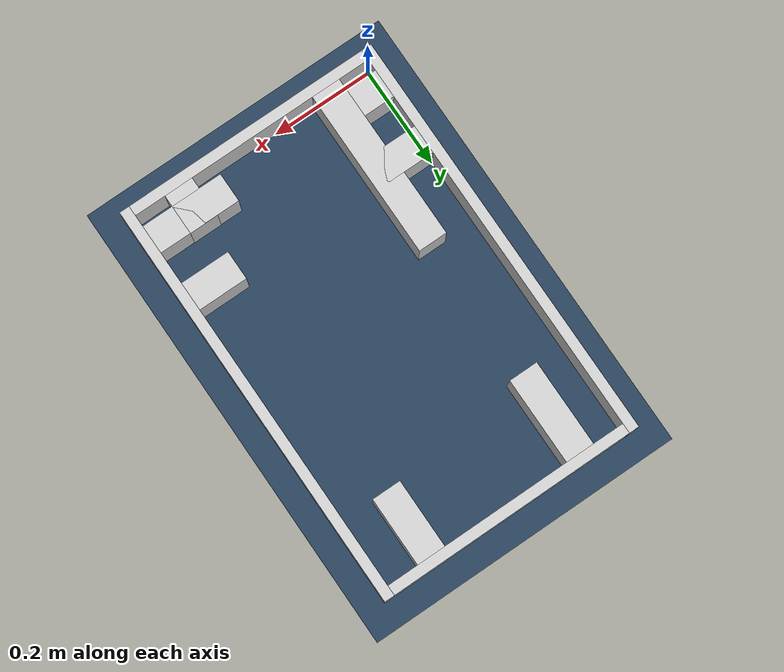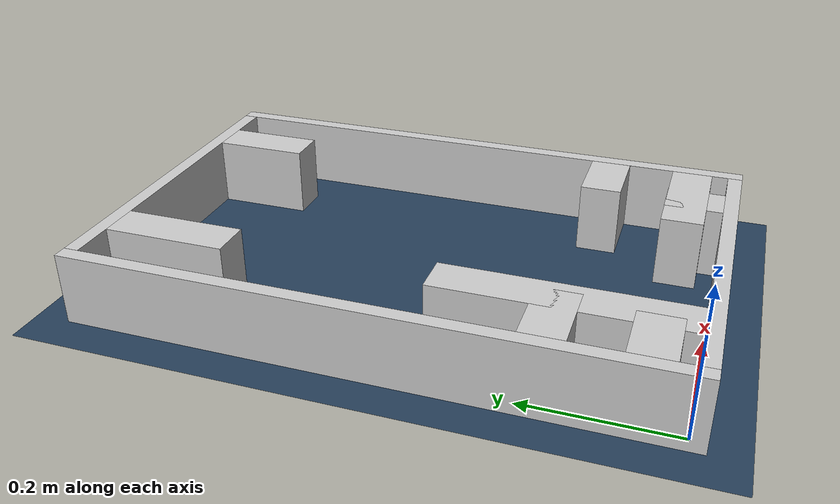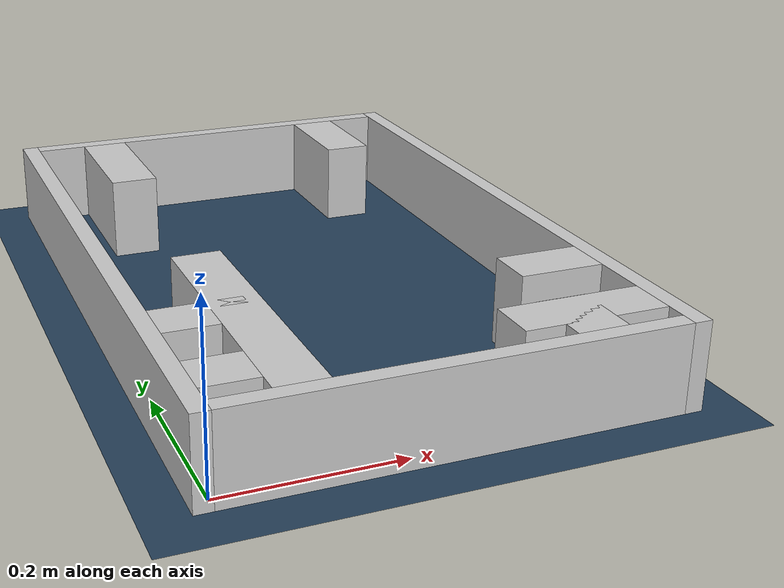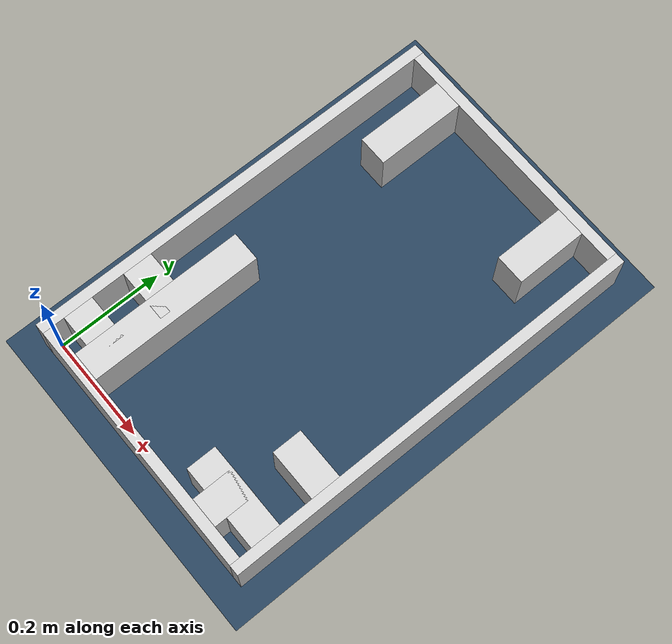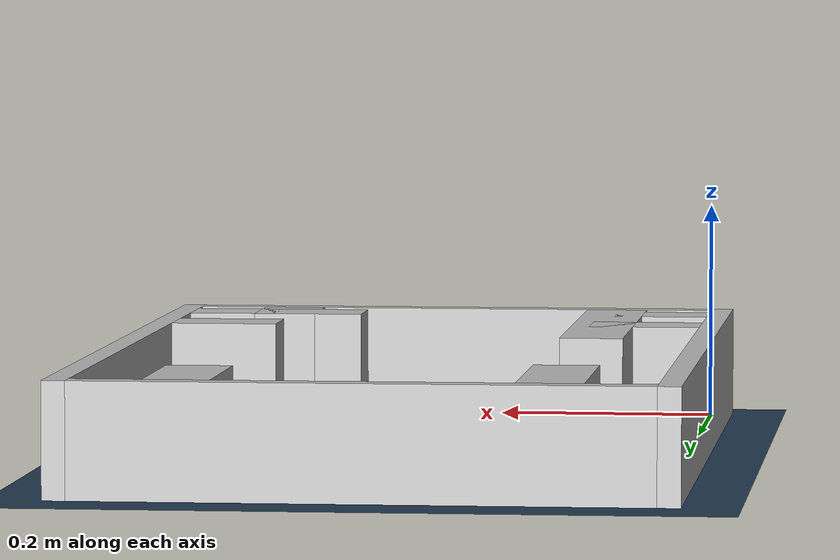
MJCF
<?xml version="1.0" ?>
<mujoco model="generated_real_template">
  <compiler angle="degree"/>
  <option timestep="0.002" integrator="implicitfast" iterations="100" cone="elliptic"/>
  <default>
    <geom density="1"/>
  </default>
  <asset>
    <texture builtin="gradient" height="3072" rgb1="0.3 0.5 0.7" rgb2="0 0 0" type="skybox" width="512"/>
    <texture builtin="checker" height="300" mark="edge" markrgb="0.8 0.8 0.8" name="groundplane" rgb1="0.2 0.3 0.4" rgb2="0.1 0.2 0.3" type="2d" width="300"/>
    <material name="groundplane" reflectance="0.2" texrepeat="5 5" texture="groundplane" texuniform="true"/>
  </asset>
  <worldbody>
    <light dir="0 0 -1" directional="true" pos="0 0 1.5"/>
    <geom name="floor" type="plane" condim="4" friction="0.5 0.005 0.001" material="groundplane" size="0 0 0.05"/>
    <body name="walls">
      <geom name="wall_boundary_left" type="box" condim="4" friction="1.0 0.005 0.0001" rgba="0.8 0.8 0.8 1" pos="-0.010000 0.387500 0.050000" euler="0 0 0.000000" size="0.010000 0.407500 0.050000"/>
      <geom name="wall_boundary_right" type="box" condim="4" friction="1.0 0.005 0.0001" rgba="0.8 0.8 0.8 1" pos="0.500000 0.387500 0.050000" euler="0 0 0.000000" size="0.010000 0.407500 0.050000"/>
      <geom name="wall_boundary_bottom" type="box" condim="4" friction="1.0 0.005 0.0001" rgba="0.8 0.8 0.8 1" pos="0.245000 -0.010000 0.050000" euler="0 0 0.000000" size="0.245000 0.010000 0.050000"/>
      <geom name="wall_boundary_top" type="box" condim="4" friction="1.0 0.005 0.0001" rgba="0.8 0.8 0.8 1" pos="0.245000 0.785000 0.050000" euler="0 0 0.000000" size="0.245000 0.010000 0.050000"/>
      <geom name="wall_inner_1_1" type="box" condim="4" friction="1.0 0.005 0.0001" rgba="0.8 0.8 0.8 1" pos="0.050641 0.171994 0.050000" euler="0 0 0.000000" size="0.050641 0.028500 0.050000"/>
      <geom name="wall_inner_1_2" type="box" condim="4" friction="1.0 0.005 0.0001" rgba="0.8 0.8 0.8 1" pos="0.441272 0.171994 0.050000" euler="0 0 0.000000" size="0.048728 0.028500 0.050000"/>
      <geom name="wall_inner_2_1" type="box" condim="4" friction="1.0 0.005 0.0001" rgba="0.8 0.8 0.8 1" pos="0.089701 0.165179 0.050000" euler="0 0 90.000000" size="0.165179 0.028500 0.050000"/>
      <geom name="wall_inner_2_2" type="box" condim="4" friction="1.0 0.005 0.0001" rgba="0.8 0.8 0.8 1" pos="0.089701 0.689671 0.050000" euler="0 0 90.000000" size="0.085329 0.028500 0.050000"/>
      <geom name="wall_inner_3_1" type="box" condim="4" friction="1.0 0.005 0.0001" rgba="0.8 0.8 0.8 1" pos="0.043245 0.051102 0.050000" euler="0 0 0.000000" size="0.043245 0.028500 0.050000"/>
      <geom name="wall_inner_3_2" type="box" condim="4" friction="1.0 0.005 0.0001" rgba="0.8 0.8 0.8 1" pos="0.408483 0.051102 0.050000" euler="0 0 0.000000" size="0.081517 0.028500 0.050000"/>
      <geom name="wall_inner_4_1" type="box" condim="4" friction="1.0 0.005 0.0001" rgba="0.8 0.8 0.8 1" pos="0.399996 0.040012 0.050000" euler="0 0 90.000000" size="0.040012 0.028500 0.050000"/>
      <geom name="wall_inner_4_2" type="box" condim="4" friction="1.0 0.005 0.0001" rgba="0.8 0.8 0.8 1" pos="0.399996 0.707121 0.050000" euler="0 0 90.000000" size="0.067879 0.028500 0.050000"/>
    </body>
  </worldbody>
</mujoco>
